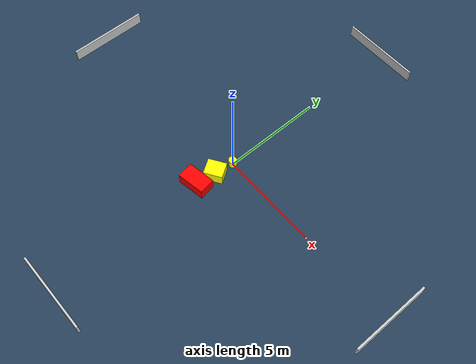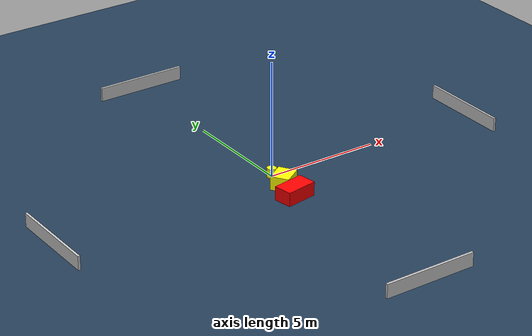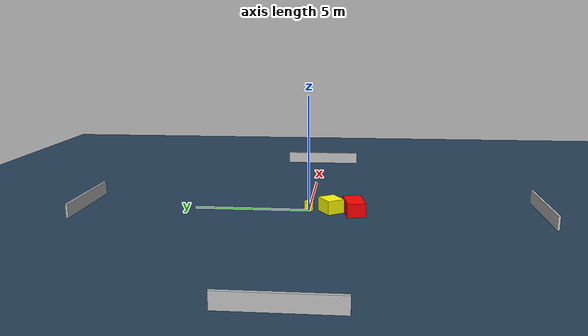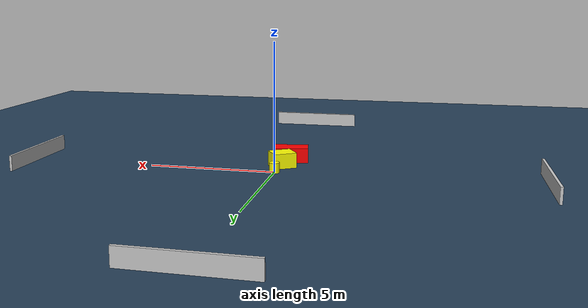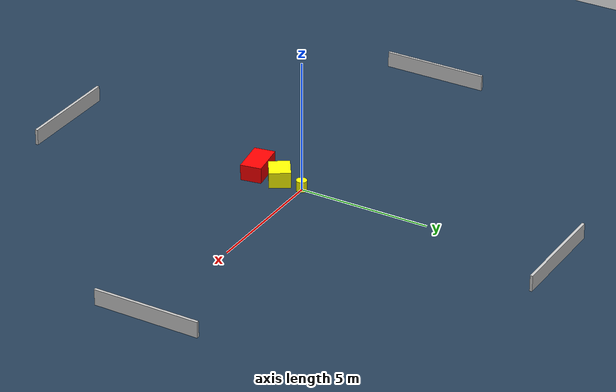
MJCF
<?xml version="1.0" ?>
<mujoco model="generated_environment">
  <option timestep="0.01" integrator="RK4" cone="elliptic"/>
  <default>
    <geom density="1"/>
  </default>
  <asset>
    <texture builtin="gradient" height="3072" name="skybox" rgb1="0.3 0.5 0.7" rgb2="0 0 0" type="skybox" width="512"/>
    <texture builtin="checker" height="300" name="groundplane" rgb1="0.2 0.3 0.4" rgb2="0.1 0.2 0.3" type="2d" width="300"/>
    <material name="groundplane" reflectance="0.2" texrepeat="5 5" texture="groundplane"/>
  </asset>
  <worldbody>
    <light dir="0 0 -1" directional="true" pos="0 0 1.5"/>
    <geom condim="3" friction="0.5 0.005 0.001" material="groundplane" name="floor" pos="0 0 0" size="0 0 0.05" type="plane"/>
    <body name="walls">
      <geom name="wall_1" condim="4" pos="-10.0 0.0 0.3" rgba="0.800000011920929 0.800000011920929 0.800000011920929 1.0" size="0.05 2.0 0.3" type="box"/>
      <geom name="wall_2" condim="4" pos="10.0 0.0 0.3" rgba="0.800000011920929 0.800000011920929 0.800000011920929 1.0" size="0.05 2.0 0.3" type="box"/>
      <geom name="wall_3" condim="4" pos="0.0 -10.0 0.3" rgba="0.800000011920929 0.800000011920929 0.800000011920929 1.0" size="2.0 0.05 0.3" type="box"/>
      <geom name="wall_4" condim="4" pos="0.0 10.0 0.3" rgba="0.800000011920929 0.800000011920929 0.800000011920929 1.0" size="2.0 0.05 0.3" type="box"/>
    </body>
    <body name="robot">
      <joint name="joint_x" type="slide" pos="0 0 0" axis="1 0 0"/>
      <joint name="joint_y" type="slide" pos="0 0 0" axis="0 1 0"/>
      <geom name="robot" type="cylinder" pos="0.0 0.0 0.2" size="0.2 0.2 0.0" mass="5.0" friction="1.0 0.005 0.0001" condim="4" rgba="1.0 1.0 0.0 1.0"/>
    </body>
    <body name="obstacle_1_movable">
      <geom name="obstacle_1_movable" condim="4" pos="-0.1042365416827422 -0.9728124010827452 0.3" euler="0 0 122.72428698211594" friction="0.0 0.005 0.001" rgba="1.0 1.0 0.0 1.0" size="0.3948570266352194 0.45548957207541285 0.3" type="box" mass="0.1"/>
      <joint type="free"/>
    </body>
    <body name="obstacle_2_static">
      <geom name="obstacle_2_static" condim="4" pos="-0.2754656067183799 -1.9747641972019028 0.3" euler="0 0 279.54631257662703" friction="0.0 0.005 0.001" rgba="1.0 0.0 0.0 1.0" size="0.39680229590873506 0.6850005400268848 0.3" type="box"/>
    </body>
  </worldbody>
  <actuator>
    <motor name="actuator_x" joint="joint_x" gear="1" ctrlrange="-1 1"/>
    <motor name="actuator_y" joint="joint_y" gear="1" ctrlrange="-1 1"/>
  </actuator>
</mujoco>
